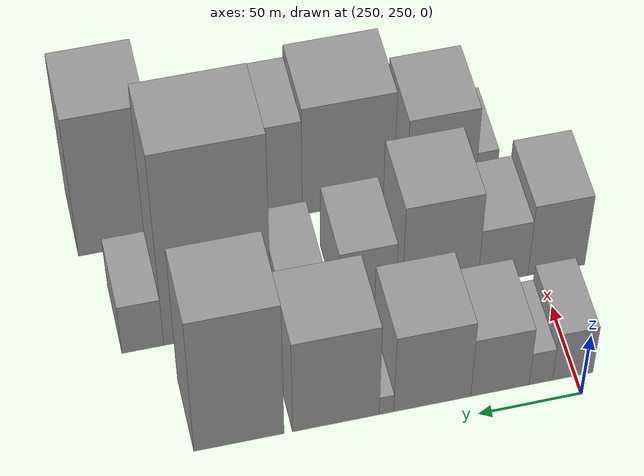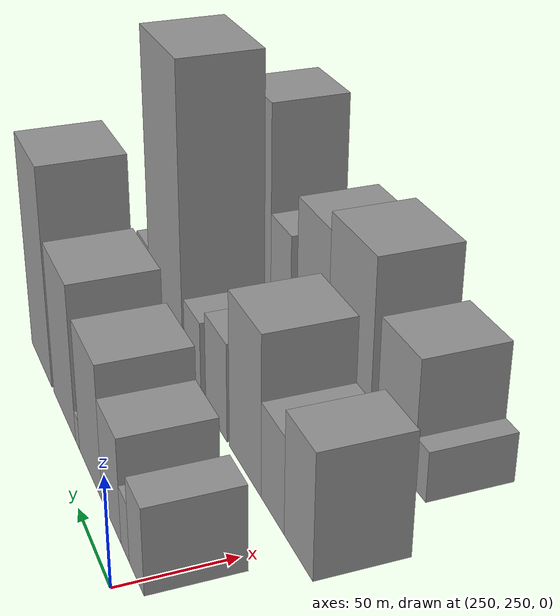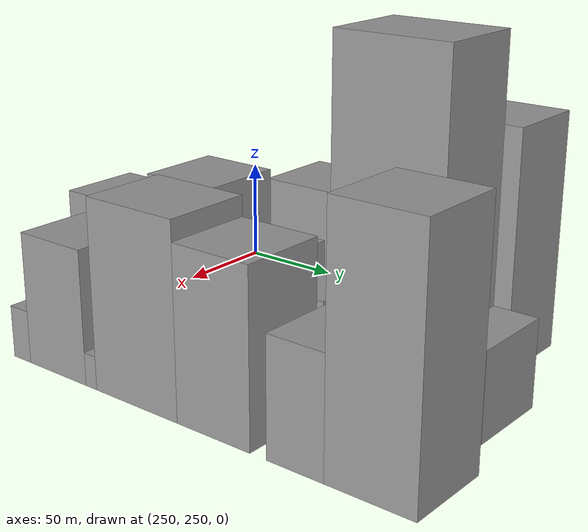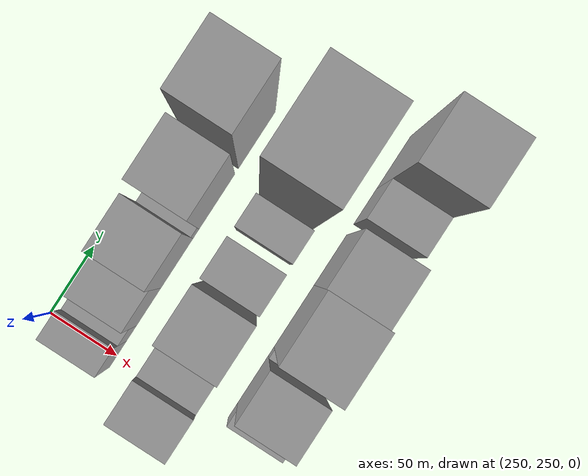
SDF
<sdf version="1.6">
 <world name="default">
  <model name="building_199">
   <static>1</static>
   <pose>280.0000 251.3506 0 0.000000 0.000000 0.000000</pose>
   <link name="link">
    <pose>0 0 19.50 0 0 0</pose>
    <collision name="collision"><geometry><box><size>40.0000 19.7576 39.0000</size></box></geometry></collision>
    <visual name="visual">
     <cast_shadows>0</cast_shadows>
     <geometry><box><size>40.0000 19.7576 39.0000</size></box></geometry>
     <material>
      <script>
       <uri>model://grey_wall/materials/scripts</uri>
       <uri>model://grey_wall/materials/textures</uri>
       <name>vrc/grey_wall</name>
      </script>
     </material>
    </visual>
   </link>
  </model>
  <model name="building_200">
   <static>1</static>
   <pose>280.0000 266.9859 0 0.000000 0.000000 0.000000</pose>
   <link name="link">
    <pose>0 0 13.50 0 0 0</pose>
    <collision name="collision"><geometry><box><size>40.0000 11.5130 27.0000</size></box></geometry></collision>
    <visual name="visual">
     <cast_shadows>0</cast_shadows>
     <geometry><box><size>40.0000 11.5130 27.0000</size></box></geometry>
     <material>
      <script>
       <uri>model://grey_wall/materials/scripts</uri>
       <uri>model://grey_wall/materials/textures</uri>
       <name>vrc/grey_wall</name>
      </script>
     </material>
    </visual>
   </link>
  </model>
  <model name="building_201">
   <static>1</static>
   <pose>280.0000 286.9195 0 0.000000 0.000000 0.000000</pose>
   <link name="link">
    <pose>0 0 24.00 0 0 0</pose>
    <collision name="collision"><geometry><box><size>40.0000 28.3541 48.0000</size></box></geometry></collision>
    <visual name="visual">
     <cast_shadows>0</cast_shadows>
     <geometry><box><size>40.0000 28.3541 48.0000</size></box></geometry>
     <material>
      <script>
       <uri>model://grey_wall/materials/scripts</uri>
       <uri>model://grey_wall/materials/textures</uri>
       <name>vrc/grey_wall</name>
      </script>
     </material>
    </visual>
   </link>
  </model>
  <model name="building_202">
   <static>1</static>
   <pose>280.0000 319.7025 0 0.000000 0.000000 0.000000</pose>
   <link name="link">
    <pose>0 0 31.50 0 0 0</pose>
    <collision name="collision"><geometry><box><size>40.0000 37.2117 63.0000</size></box></geometry></collision>
    <visual name="visual">
     <cast_shadows>0</cast_shadows>
     <geometry><box><size>40.0000 37.2117 63.0000</size></box></geometry>
     <material>
      <script>
       <uri>model://grey_wall/materials/scripts</uri>
       <uri>model://grey_wall/materials/textures</uri>
       <name>vrc/grey_wall</name>
      </script>
     </material>
    </visual>
   </link>
  </model>
  <model name="building_203">
   <static>1</static>
   <pose>280.0000 341.7970 0 0.000000 0.000000 0.000000</pose>
   <link name="link">
    <pose>0 0 7.50 0 0 0</pose>
    <collision name="collision"><geometry><box><size>40.0000 6.9774 15.0000</size></box></geometry></collision>
    <visual name="visual">
     <cast_shadows>0</cast_shadows>
     <geometry><box><size>40.0000 6.9774 15.0000</size></box></geometry>
     <material>
      <script>
       <uri>model://grey_wall/materials/scripts</uri>
       <uri>model://grey_wall/materials/textures</uri>
       <name>vrc/grey_wall</name>
      </script>
     </material>
    </visual>
   </link>
  </model>
  <model name="building_204">
   <static>1</static>
   <pose>280.0000 365.9866 0 0.000000 0.000000 0.000000</pose>
   <link name="link">
    <pose>0 0 37.50 0 0 0</pose>
    <collision name="collision"><geometry><box><size>40.0000 41.4018 75.0000</size></box></geometry></collision>
    <visual name="visual">
     <cast_shadows>0</cast_shadows>
     <geometry><box><size>40.0000 41.4018 75.0000</size></box></geometry>
     <material>
      <script>
       <uri>model://grey_wall/materials/scripts</uri>
       <uri>model://grey_wall/materials/textures</uri>
       <name>vrc/grey_wall</name>
      </script>
     </material>
    </visual>
   </link>
  </model>
  <model name="building_205">
   <static>1</static>
   <pose>280.0000 412.0388 0 0.000000 0.000000 0.000000</pose>
   <link name="link">
    <pose>0 0 54.00 0 0 0</pose>
    <collision name="collision"><geometry><box><size>40.0000 42.7027 108.0000</size></box></geometry></collision>
    <visual name="visual">
     <cast_shadows>0</cast_shadows>
     <geometry><box><size>40.0000 42.7027 108.0000</size></box></geometry>
     <material>
      <script>
       <uri>model://grey_wall/materials/scripts</uri>
       <uri>model://grey_wall/materials/textures</uri>
       <name>vrc/grey_wall</name>
      </script>
     </material>
    </visual>
   </link>
  </model>
  <model name="building_256">
   <static>1</static>
   <pose>340.0000 242.0557 0 0.000000 0.000000 0.000000</pose>
   <link name="link">
    <pose>0 0 28.50 0 0 0</pose>
    <collision name="collision"><geometry><box><size>40.0000 28.7600 57.0000</size></box></geometry></collision>
    <visual name="visual">
     <cast_shadows>0</cast_shadows>
     <geometry><box><size>40.0000 28.7600 57.0000</size></box></geometry>
     <material>
      <script>
       <uri>model://grey_wall/materials/scripts</uri>
       <uri>model://grey_wall/materials/textures</uri>
       <name>vrc/grey_wall</name>
      </script>
     </material>
    </visual>
   </link>
  </model>
  <model name="building_257">
   <static>1</static>
   <pose>340.0000 269.0183 0 0.000000 0.000000 0.000000</pose>
   <link name="link">
    <pose>0 0 22.50 0 0 0</pose>
    <collision name="collision"><geometry><box><size>40.0000 25.1653 45.0000</size></box></geometry></collision>
    <visual name="visual">
     <cast_shadows>0</cast_shadows>
     <geometry><box><size>40.0000 25.1653 45.0000</size></box></geometry>
     <material>
      <script>
       <uri>model://grey_wall/materials/scripts</uri>
       <uri>model://grey_wall/materials/textures</uri>
       <name>vrc/grey_wall</name>
      </script>
     </material>
    </visual>
   </link>
  </model>
  <model name="building_258">
   <static>1</static>
   <pose>340.0000 300.5375 0 0.000000 0.000000 0.000000</pose>
   <link name="link">
    <pose>0 0 37.50 0 0 0</pose>
    <collision name="collision"><geometry><box><size>40.0000 37.8731 75.0000</size></box></geometry></collision>
    <visual name="visual">
     <cast_shadows>0</cast_shadows>
     <geometry><box><size>40.0000 37.8731 75.0000</size></box></geometry>
     <material>
      <script>
       <uri>model://grey_wall/materials/scripts</uri>
       <uri>model://grey_wall/materials/textures</uri>
       <name>vrc/grey_wall</name>
      </script>
     </material>
    </visual>
   </link>
  </model>
  <model name="building_259">
   <static>1</static>
   <pose>340.0000 336.5421 0 0.000000 0.000000 0.000000</pose>
   <link name="link">
    <pose>0 0 24.00 0 0 0</pose>
    <collision name="collision"><geometry><box><size>40.0000 28.1360 48.0000</size></box></geometry></collision>
    <visual name="visual">
     <cast_shadows>0</cast_shadows>
     <geometry><box><size>40.0000 28.1360 48.0000</size></box></geometry>
     <material>
      <script>
       <uri>model://grey_wall/materials/scripts</uri>
       <uri>model://grey_wall/materials/textures</uri>
       <name>vrc/grey_wall</name>
      </script>
     </material>
    </visual>
   </link>
  </model>
  <model name="building_260">
   <static>1</static>
   <pose>340.0000 369.1292 0 0.000000 0.000000 0.000000</pose>
   <link name="link">
    <pose>0 0 19.50 0 0 0</pose>
    <collision name="collision"><geometry><box><size>40.0000 23.0383 39.0000</size></box></geometry></collision>
    <visual name="visual">
     <cast_shadows>0</cast_shadows>
     <geometry><box><size>40.0000 23.0383 39.0000</size></box></geometry>
     <material>
      <script>
       <uri>model://grey_wall/materials/scripts</uri>
       <uri>model://grey_wall/materials/textures</uri>
       <name>vrc/grey_wall</name>
      </script>
     </material>
    </visual>
   </link>
  </model>
  <model name="building_261">
   <static>1</static>
   <pose>340.0000 409.8679 0 0.000000 0.000000 0.000000</pose>
   <link name="link">
    <pose>0 0 75.00 0 0 0</pose>
    <collision name="collision"><geometry><box><size>40.0000 52.4390 150.0000</size></box></geometry></collision>
    <visual name="visual">
     <cast_shadows>0</cast_shadows>
     <geometry><box><size>40.0000 52.4390 150.0000</size></box></geometry>
     <material>
      <script>
       <uri>model://grey_wall/materials/scripts</uri>
       <uri>model://grey_wall/materials/textures</uri>
       <name>vrc/grey_wall</name>
      </script>
     </material>
    </visual>
   </link>
  </model>
  <model name="building_262">
   <static>1</static>
   <pose>340.0000 446.2205 0 0.000000 0.000000 0.000000</pose>
   <link name="link">
    <pose>0 0 19.50 0 0 0</pose>
    <collision name="collision"><geometry><box><size>40.0000 20.2662 39.0000</size></box></geometry></collision>
    <visual name="visual">
     <cast_shadows>0</cast_shadows>
     <geometry><box><size>40.0000 20.2662 39.0000</size></box></geometry>
     <material>
      <script>
       <uri>model://grey_wall/materials/scripts</uri>
       <uri>model://grey_wall/materials/textures</uri>
       <name>vrc/grey_wall</name>
      </script>
     </material>
    </visual>
   </link>
  </model>
  <model name="building_310">
   <static>1</static>
   <pose>400.0000 261.1063 0 0.000000 0.000000 0.000000</pose>
   <link name="link">
    <pose>0 0 12.00 0 0 0</pose>
    <collision name="collision"><geometry><box><size>40.0000 10.8845 24.0000</size></box></geometry></collision>
    <visual name="visual">
     <cast_shadows>0</cast_shadows>
     <geometry><box><size>40.0000 10.8845 24.0000</size></box></geometry>
     <material>
      <script>
       <uri>model://grey_wall/materials/scripts</uri>
       <uri>model://grey_wall/materials/textures</uri>
       <name>vrc/grey_wall</name>
      </script>
     </material>
    </visual>
   </link>
  </model>
  <model name="building_311">
   <static>1</static>
   <pose>400.0000 284.4006 0 0.000000 0.000000 0.000000</pose>
   <link name="link">
    <pose>0 0 30.00 0 0 0</pose>
    <collision name="collision"><geometry><box><size>40.0000 35.7041 60.0000</size></box></geometry></collision>
    <visual name="visual">
     <cast_shadows>0</cast_shadows>
     <geometry><box><size>40.0000 35.7041 60.0000</size></box></geometry>
     <material>
      <script>
       <uri>model://grey_wall/materials/scripts</uri>
       <uri>model://grey_wall/materials/textures</uri>
       <name>vrc/grey_wall</name>
      </script>
     </material>
    </visual>
   </link>
  </model>
  <model name="building_312">
   <static>1</static>
   <pose>400.0000 305.5377 0 0.000000 0.000000 0.000000</pose>
   <link name="link">
    <pose>0 0 7.50 0 0 0</pose>
    <collision name="collision"><geometry><box><size>40.0000 6.5700 15.0000</size></box></geometry></collision>
    <visual name="visual">
     <cast_shadows>0</cast_shadows>
     <geometry><box><size>40.0000 6.5700 15.0000</size></box></geometry>
     <material>
      <script>
       <uri>model://grey_wall/materials/scripts</uri>
       <uri>model://grey_wall/materials/textures</uri>
       <name>vrc/grey_wall</name>
      </script>
     </material>
    </visual>
   </link>
  </model>
  <model name="building_313">
   <static>1</static>
   <pose>400.0000 331.9923 0 0.000000 0.000000 0.000000</pose>
   <link name="link">
    <pose>0 0 42.00 0 0 0</pose>
    <collision name="collision"><geometry><box><size>40.0000 46.3393 84.0000</size></box></geometry></collision>
    <visual name="visual">
     <cast_shadows>0</cast_shadows>
     <geometry><box><size>40.0000 46.3393 84.0000</size></box></geometry>
     <material>
      <script>
       <uri>model://grey_wall/materials/scripts</uri>
       <uri>model://grey_wall/materials/textures</uri>
       <name>vrc/grey_wall</name>
      </script>
     </material>
    </visual>
   </link>
  </model>
  <model name="building_314">
   <static>1</static>
   <pose>400.0000 374.0036 0 0.000000 0.000000 0.000000</pose>
   <link name="link">
    <pose>0 0 37.50 0 0 0</pose>
    <collision name="collision"><geometry><box><size>40.0000 37.6833 75.0000</size></box></geometry></collision>
    <visual name="visual">
     <cast_shadows>0</cast_shadows>
     <geometry><box><size>40.0000 37.6833 75.0000</size></box></geometry>
     <material>
      <script>
       <uri>model://grey_wall/materials/scripts</uri>
       <uri>model://grey_wall/materials/textures</uri>
       <name>vrc/grey_wall</name>
      </script>
     </material>
    </visual>
   </link>
  </model>
  <model name="building_315">
   <static>1</static>
   <pose>400.0000 414.1555 0 0.000000 0.000000 0.000000</pose>
   <link name="link">
    <pose>0 0 25.50 0 0 0</pose>
    <collision name="collision"><geometry><box><size>40.0000 26.6205 51.0000</size></box></geometry></collision>
    <visual name="visual">
     <cast_shadows>0</cast_shadows>
     <geometry><box><size>40.0000 26.6205 51.0000</size></box></geometry>
     <material>
      <script>
       <uri>model://grey_wall/materials/scripts</uri>
       <uri>model://grey_wall/materials/textures</uri>
       <name>vrc/grey_wall</name>
      </script>
     </material>
    </visual>
   </link>
  </model>
  <model name="building_316">
   <static>1</static>
   <pose>400.0000 447.3115 0 0.000000 0.000000 0.000000</pose>
   <link name="link">
    <pose>0 0 54.00 0 0 0</pose>
    <collision name="collision"><geometry><box><size>40.0000 39.6914 108.0000</size></box></geometry></collision>
    <visual name="visual">
     <cast_shadows>0</cast_shadows>
     <geometry><box><size>40.0000 39.6914 108.0000</size></box></geometry>
     <material>
      <script>
       <uri>model://grey_wall/materials/scripts</uri>
       <uri>model://grey_wall/materials/textures</uri>
       <name>vrc/grey_wall</name>
      </script>
     </material>
    </visual>
   </link>
  </model>
 </world>
</sdf>
